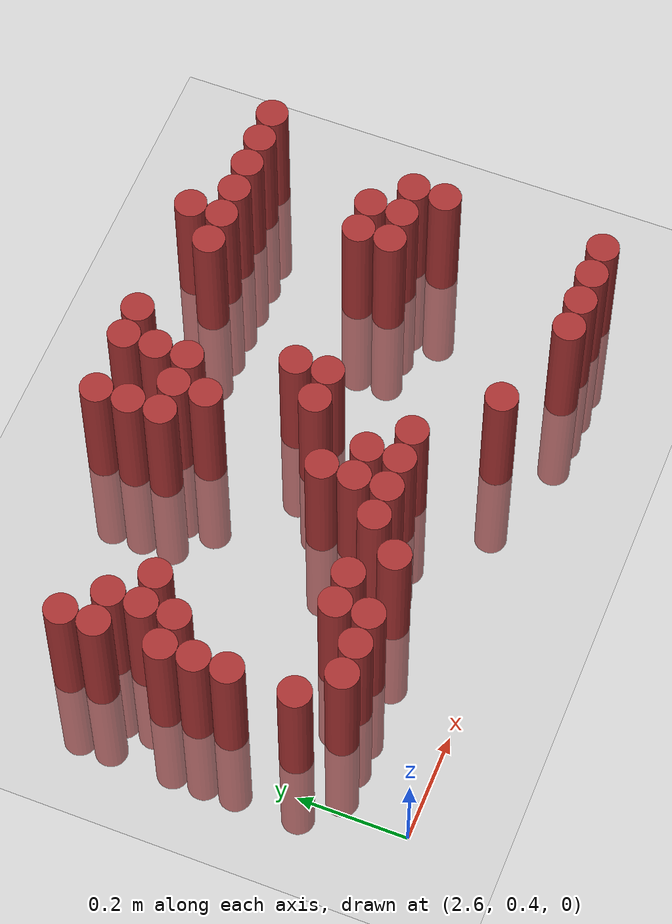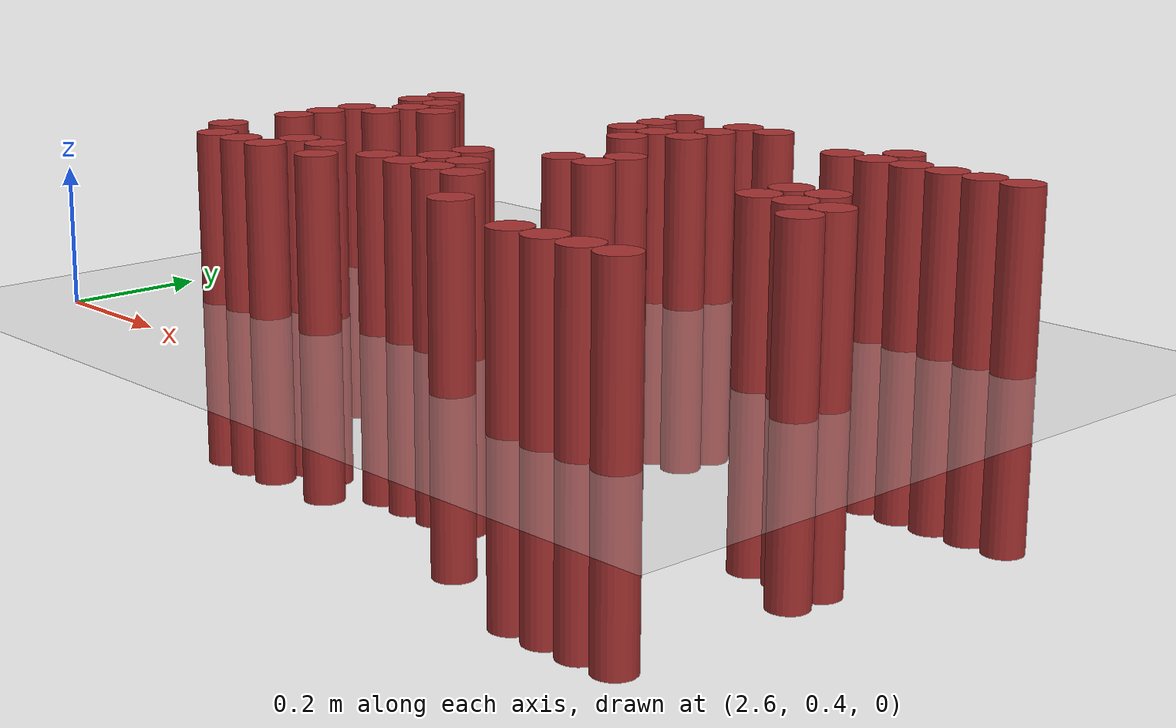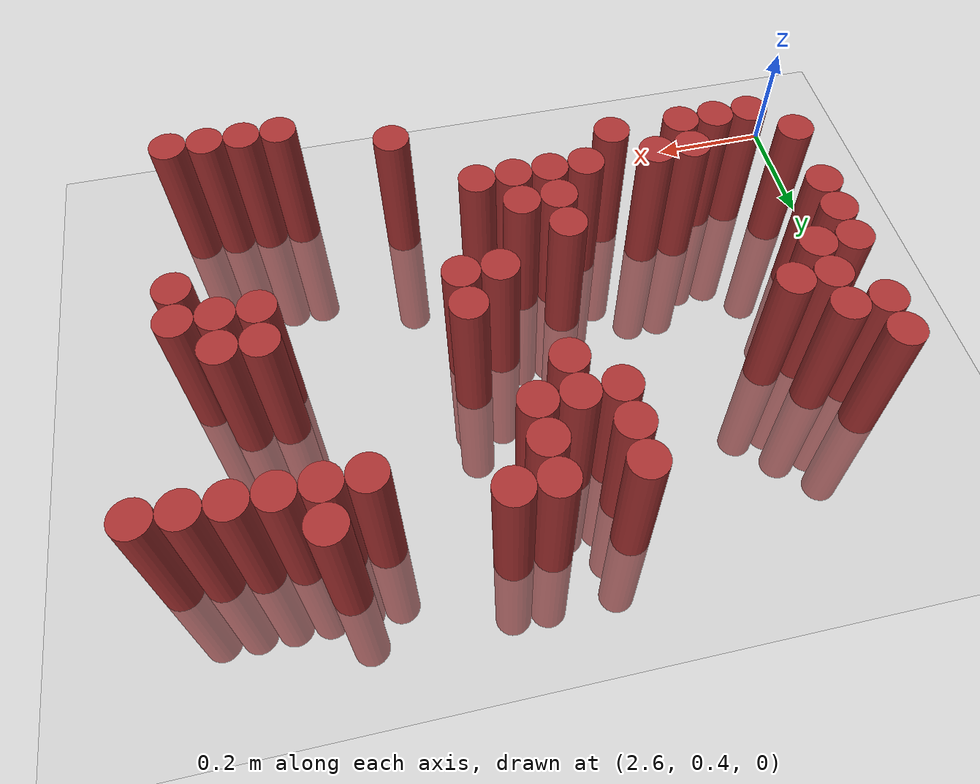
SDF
<sdf version="1.6">
 <world name="default">
  <model name="ground_plane">
   <static>1</static>
   <link name="link">
    <collision name="collision">
     <geometry><plane><normal>0 0 1</normal><size>100 100</size></plane></geometry>
     <surface><friction><ode><mu>100</mu><mu2>50</mu2></ode></friction></surface>
    </collision>
    <visual name="visual">
     <cast_shadows>0</cast_shadows>
     <geometry><plane><normal>0 0 1</normal><size>100 100</size></plane></geometry>
     <material>
      <script><uri>file://media/materials/scripts/gazebo.material</uri><name>Gazebo/Grey</name></script>
     </material>
    </visual>
   </link>
  </model>
  <model name="unit_cylinder_155">
   <static>1</static>
   <pose>3.090000 1.170000 0.000000 0.000000 0.000000 0.000000</pose>
   <link name="link">
    <inertial>
     <mass>1</mass>
     <inertia><ixx>0.145833</ixx><ixy>0</ixy><ixz>0</ixz><iyy>0.145833</iyy><iyz>0</iyz><izz>0.125</izz></inertia>
    </inertial>
    <collision name="collision">
     <geometry><cylinder><radius>0.030000</radius><length>0.5</length></cylinder></geometry>
    </collision>
    <visual name="visual">
     <geometry><cylinder><radius>0.030000</radius><length>0.5</length></cylinder></geometry>
     <material>
      <ambient>0.648000 0.192000 0.192000 1</ambient>
      <diffuse>0.648000 0.192000 0.192000 1</diffuse>
     </material>
     <material>
      <script><name>Gazebo/Grey</name><uri>file://media/materials/scripts/gazebo.material</uri></script>
     </material>
    </visual>
   </link>
  </model>
  <model name="unit_cylinder_156">
   <static>1</static>
   <pose>3.210000 1.170000 0.000000 0.000000 0.000000 0.000000</pose>
   <link name="link">
    <inertial>
     <mass>1</mass>
     <inertia><ixx>0.145833</ixx><ixy>0</ixy><ixz>0</ixz><iyy>0.145833</iyy><iyz>0</iyz><izz>0.125</izz></inertia>
    </inertial>
    <collision name="collision">
     <geometry><cylinder><radius>0.030000</radius><length>0.5</length></cylinder></geometry>
    </collision>
    <visual name="visual">
     <geometry><cylinder><radius>0.030000</radius><length>0.5</length></cylinder></geometry>
     <material>
      <ambient>0.648000 0.192000 0.192000 1</ambient>
      <diffuse>0.648000 0.192000 0.192000 1</diffuse>
     </material>
     <material>
      <script><name>Gazebo/Grey</name><uri>file://media/materials/scripts/gazebo.material</uri></script>
     </material>
    </visual>
   </link>
  </model>
  <model name="unit_cylinder_157">
   <static>1</static>
   <pose>3.270000 1.170000 0.000000 0.000000 0.000000 0.000000</pose>
   <link name="link">
    <inertial>
     <mass>1</mass>
     <inertia><ixx>0.145833</ixx><ixy>0</ixy><ixz>0</ixz><iyy>0.145833</iyy><iyz>0</iyz><izz>0.125</izz></inertia>
    </inertial>
    <collision name="collision">
     <geometry><cylinder><radius>0.030000</radius><length>0.5</length></cylinder></geometry>
    </collision>
    <visual name="visual">
     <geometry><cylinder><radius>0.030000</radius><length>0.5</length></cylinder></geometry>
     <material>
      <ambient>0.648000 0.192000 0.192000 1</ambient>
      <diffuse>0.648000 0.192000 0.192000 1</diffuse>
     </material>
     <material>
      <script><name>Gazebo/Grey</name><uri>file://media/materials/scripts/gazebo.material</uri></script>
     </material>
    </visual>
   </link>
  </model>
  <model name="unit_cylinder_158">
   <static>1</static>
   <pose>3.510000 1.170000 0.000000 0.000000 0.000000 0.000000</pose>
   <link name="link">
    <inertial>
     <mass>1</mass>
     <inertia><ixx>0.145833</ixx><ixy>0</ixy><ixz>0</ixz><iyy>0.145833</iyy><iyz>0</iyz><izz>0.125</izz></inertia>
    </inertial>
    <collision name="collision">
     <geometry><cylinder><radius>0.030000</radius><length>0.5</length></cylinder></geometry>
    </collision>
    <visual name="visual">
     <geometry><cylinder><radius>0.030000</radius><length>0.5</length></cylinder></geometry>
     <material>
      <ambient>0.648000 0.192000 0.192000 1</ambient>
      <diffuse>0.648000 0.192000 0.192000 1</diffuse>
     </material>
     <material>
      <script><name>Gazebo/Grey</name><uri>file://media/materials/scripts/gazebo.material</uri></script>
     </material>
    </visual>
   </link>
  </model>
  <model name="unit_cylinder_164">
   <static>1</static>
   <pose>3.090000 1.110000 0.000000 0.000000 0.000000 0.000000</pose>
   <link name="link">
    <inertial>
     <mass>1</mass>
     <inertia><ixx>0.145833</ixx><ixy>0</ixy><ixz>0</ixz><iyy>0.145833</iyy><iyz>0</iyz><izz>0.125</izz></inertia>
    </inertial>
    <collision name="collision">
     <geometry><cylinder><radius>0.030000</radius><length>0.5</length></cylinder></geometry>
    </collision>
    <visual name="visual">
     <geometry><cylinder><radius>0.030000</radius><length>0.5</length></cylinder></geometry>
     <material>
      <ambient>0.648000 0.192000 0.192000 1</ambient>
      <diffuse>0.648000 0.192000 0.192000 1</diffuse>
     </material>
     <material>
      <script><name>Gazebo/Grey</name><uri>file://media/materials/scripts/gazebo.material</uri></script>
     </material>
    </visual>
   </link>
  </model>
  <model name="unit_cylinder_165">
   <static>1</static>
   <pose>3.210000 1.110000 0.000000 0.000000 0.000000 0.000000</pose>
   <link name="link">
    <inertial>
     <mass>1</mass>
     <inertia><ixx>0.145833</ixx><ixy>0</ixy><ixz>0</ixz><iyy>0.145833</iyy><iyz>0</iyz><izz>0.125</izz></inertia>
    </inertial>
    <collision name="collision">
     <geometry><cylinder><radius>0.030000</radius><length>0.5</length></cylinder></geometry>
    </collision>
    <visual name="visual">
     <geometry><cylinder><radius>0.030000</radius><length>0.5</length></cylinder></geometry>
     <material>
      <ambient>0.648000 0.192000 0.192000 1</ambient>
      <diffuse>0.648000 0.192000 0.192000 1</diffuse>
     </material>
     <material>
      <script><name>Gazebo/Grey</name><uri>file://media/materials/scripts/gazebo.material</uri></script>
     </material>
    </visual>
   </link>
  </model>
  <model name="unit_cylinder_166">
   <static>1</static>
   <pose>3.450000 1.110000 0.000000 0.000000 0.000000 0.000000</pose>
   <link name="link">
    <inertial>
     <mass>1</mass>
     <inertia><ixx>0.145833</ixx><ixy>0</ixy><ixz>0</ixz><iyy>0.145833</iyy><iyz>0</iyz><izz>0.125</izz></inertia>
    </inertial>
    <collision name="collision">
     <geometry><cylinder><radius>0.030000</radius><length>0.5</length></cylinder></geometry>
    </collision>
    <visual name="visual">
     <geometry><cylinder><radius>0.030000</radius><length>0.5</length></cylinder></geometry>
     <material>
      <ambient>0.648000 0.192000 0.192000 1</ambient>
      <diffuse>0.648000 0.192000 0.192000 1</diffuse>
     </material>
     <material>
      <script><name>Gazebo/Grey</name><uri>file://media/materials/scripts/gazebo.material</uri></script>
     </material>
    </visual>
   </link>
  </model>
  <model name="unit_cylinder_167">
   <static>1</static>
   <pose>3.510000 1.110000 0.000000 0.000000 0.000000 0.000000</pose>
   <link name="link">
    <inertial>
     <mass>1</mass>
     <inertia><ixx>0.145833</ixx><ixy>0</ixy><ixz>0</ixz><iyy>0.145833</iyy><iyz>0</iyz><izz>0.125</izz></inertia>
    </inertial>
    <collision name="collision">
     <geometry><cylinder><radius>0.030000</radius><length>0.5</length></cylinder></geometry>
    </collision>
    <visual name="visual">
     <geometry><cylinder><radius>0.030000</radius><length>0.5</length></cylinder></geometry>
     <material>
      <ambient>0.648000 0.192000 0.192000 1</ambient>
      <diffuse>0.648000 0.192000 0.192000 1</diffuse>
     </material>
     <material>
      <script><name>Gazebo/Grey</name><uri>file://media/materials/scripts/gazebo.material</uri></script>
     </material>
    </visual>
   </link>
  </model>
  <model name="unit_cylinder_168">
   <static>1</static>
   <pose>3.570000 1.110000 0.000000 0.000000 0.000000 0.000000</pose>
   <link name="link">
    <inertial>
     <mass>1</mass>
     <inertia><ixx>0.145833</ixx><ixy>0</ixy><ixz>0</ixz><iyy>0.145833</iyy><iyz>0</iyz><izz>0.125</izz></inertia>
    </inertial>
    <collision name="collision">
     <geometry><cylinder><radius>0.030000</radius><length>0.5</length></cylinder></geometry>
    </collision>
    <visual name="visual">
     <geometry><cylinder><radius>0.030000</radius><length>0.5</length></cylinder></geometry>
     <material>
      <ambient>0.648000 0.192000 0.192000 1</ambient>
      <diffuse>0.648000 0.192000 0.192000 1</diffuse>
     </material>
     <material>
      <script><name>Gazebo/Grey</name><uri>file://media/materials/scripts/gazebo.material</uri></script>
     </material>
    </visual>
   </link>
  </model>
  <model name="unit_cylinder_169">
   <static>1</static>
   <pose>3.630000 1.110000 0.000000 0.000000 0.000000 0.000000</pose>
   <link name="link">
    <inertial>
     <mass>1</mass>
     <inertia><ixx>0.145833</ixx><ixy>0</ixy><ixz>0</ixz><iyy>0.145833</iyy><iyz>0</iyz><izz>0.125</izz></inertia>
    </inertial>
    <collision name="collision">
     <geometry><cylinder><radius>0.030000</radius><length>0.5</length></cylinder></geometry>
    </collision>
    <visual name="visual">
     <geometry><cylinder><radius>0.030000</radius><length>0.5</length></cylinder></geometry>
     <material>
      <ambient>0.648000 0.192000 0.192000 1</ambient>
      <diffuse>0.648000 0.192000 0.192000 1</diffuse>
     </material>
     <material>
      <script><name>Gazebo/Grey</name><uri>file://media/materials/scripts/gazebo.material</uri></script>
     </material>
    </visual>
   </link>
  </model>
  <model name="unit_cylinder_170">
   <static>1</static>
   <pose>3.690000 1.110000 0.000000 0.000000 0.000000 0.000000</pose>
   <link name="link">
    <inertial>
     <mass>1</mass>
     <inertia><ixx>0.145833</ixx><ixy>0</ixy><ixz>0</ixz><iyy>0.145833</iyy><iyz>0</iyz><izz>0.125</izz></inertia>
    </inertial>
    <collision name="collision">
     <geometry><cylinder><radius>0.030000</radius><length>0.5</length></cylinder></geometry>
    </collision>
    <visual name="visual">
     <geometry><cylinder><radius>0.030000</radius><length>0.5</length></cylinder></geometry>
     <material>
      <ambient>0.648000 0.192000 0.192000 1</ambient>
      <diffuse>0.648000 0.192000 0.192000 1</diffuse>
     </material>
     <material>
      <script><name>Gazebo/Grey</name><uri>file://media/materials/scripts/gazebo.material</uri></script>
     </material>
    </visual>
   </link>
  </model>
  <model name="unit_cylinder_171">
   <static>1</static>
   <pose>3.750000 1.110000 0.000000 0.000000 0.000000 0.000000</pose>
   <link name="link">
    <inertial>
     <mass>1</mass>
     <inertia><ixx>0.145833</ixx><ixy>0</ixy><ixz>0</ixz><iyy>0.145833</iyy><iyz>0</iyz><izz>0.125</izz></inertia>
    </inertial>
    <collision name="collision">
     <geometry><cylinder><radius>0.030000</radius><length>0.5</length></cylinder></geometry>
    </collision>
    <visual name="visual">
     <geometry><cylinder><radius>0.030000</radius><length>0.5</length></cylinder></geometry>
     <material>
      <ambient>0.648000 0.192000 0.192000 1</ambient>
      <diffuse>0.648000 0.192000 0.192000 1</diffuse>
     </material>
     <material>
      <script><name>Gazebo/Grey</name><uri>file://media/materials/scripts/gazebo.material</uri></script>
     </material>
    </visual>
   </link>
  </model>
  <model name="unit_cylinder_174">
   <static>1</static>
   <pose>2.670000 1.050000 0.000000 0.000000 0.000000 0.000000</pose>
   <link name="link">
    <inertial>
     <mass>1</mass>
     <inertia><ixx>0.145833</ixx><ixy>0</ixy><ixz>0</ixz><iyy>0.145833</iyy><iyz>0</iyz><izz>0.125</izz></inertia>
    </inertial>
    <collision name="collision">
     <geometry><cylinder><radius>0.030000</radius><length>0.5</length></cylinder></geometry>
    </collision>
    <visual name="visual">
     <geometry><cylinder><radius>0.030000</radius><length>0.5</length></cylinder></geometry>
     <material>
      <ambient>0.648000 0.192000 0.192000 1</ambient>
      <diffuse>0.648000 0.192000 0.192000 1</diffuse>
     </material>
     <material>
      <script><name>Gazebo/Grey</name><uri>file://media/materials/scripts/gazebo.material</uri></script>
     </material>
    </visual>
   </link>
  </model>
  <model name="unit_cylinder_175">
   <static>1</static>
   <pose>3.090000 1.050000 0.000000 0.000000 0.000000 0.000000</pose>
   <link name="link">
    <inertial>
     <mass>1</mass>
     <inertia><ixx>0.145833</ixx><ixy>0</ixy><ixz>0</ixz><iyy>0.145833</iyy><iyz>0</iyz><izz>0.125</izz></inertia>
    </inertial>
    <collision name="collision">
     <geometry><cylinder><radius>0.030000</radius><length>0.5</length></cylinder></geometry>
    </collision>
    <visual name="visual">
     <geometry><cylinder><radius>0.030000</radius><length>0.5</length></cylinder></geometry>
     <material>
      <ambient>0.648000 0.192000 0.192000 1</ambient>
      <diffuse>0.648000 0.192000 0.192000 1</diffuse>
     </material>
     <material>
      <script><name>Gazebo/Grey</name><uri>file://media/materials/scripts/gazebo.material</uri></script>
     </material>
    </visual>
   </link>
  </model>
  <model name="unit_cylinder_176">
   <static>1</static>
   <pose>3.150000 1.050000 0.000000 0.000000 0.000000 0.000000</pose>
   <link name="link">
    <inertial>
     <mass>1</mass>
     <inertia><ixx>0.145833</ixx><ixy>0</ixy><ixz>0</ixz><iyy>0.145833</iyy><iyz>0</iyz><izz>0.125</izz></inertia>
    </inertial>
    <collision name="collision">
     <geometry><cylinder><radius>0.030000</radius><length>0.5</length></cylinder></geometry>
    </collision>
    <visual name="visual">
     <geometry><cylinder><radius>0.030000</radius><length>0.5</length></cylinder></geometry>
     <material>
      <ambient>0.648000 0.192000 0.192000 1</ambient>
      <diffuse>0.648000 0.192000 0.192000 1</diffuse>
     </material>
     <material>
      <script><name>Gazebo/Grey</name><uri>file://media/materials/scripts/gazebo.material</uri></script>
     </material>
    </visual>
   </link>
  </model>
  <model name="unit_cylinder_177">
   <static>1</static>
   <pose>3.210000 1.050000 0.000000 0.000000 0.000000 0.000000</pose>
   <link name="link">
    <inertial>
     <mass>1</mass>
     <inertia><ixx>0.145833</ixx><ixy>0</ixy><ixz>0</ixz><iyy>0.145833</iyy><iyz>0</iyz><izz>0.125</izz></inertia>
    </inertial>
    <collision name="collision">
     <geometry><cylinder><radius>0.030000</radius><length>0.5</length></cylinder></geometry>
    </collision>
    <visual name="visual">
     <geometry><cylinder><radius>0.030000</radius><length>0.5</length></cylinder></geometry>
     <material>
      <ambient>0.648000 0.192000 0.192000 1</ambient>
      <diffuse>0.648000 0.192000 0.192000 1</diffuse>
     </material>
     <material>
      <script><name>Gazebo/Grey</name><uri>file://media/materials/scripts/gazebo.material</uri></script>
     </material>
    </visual>
   </link>
  </model>
  <model name="unit_cylinder_183">
   <static>1</static>
   <pose>2.670000 0.990000 0.000000 0.000000 0.000000 0.000000</pose>
   <link name="link">
    <inertial>
     <mass>1</mass>
     <inertia><ixx>0.145833</ixx><ixy>0</ixy><ixz>0</ixz><iyy>0.145833</iyy><iyz>0</iyz><izz>0.125</izz></inertia>
    </inertial>
    <collision name="collision">
     <geometry><cylinder><radius>0.030000</radius><length>0.5</length></cylinder></geometry>
    </collision>
    <visual name="visual">
     <geometry><cylinder><radius>0.030000</radius><length>0.5</length></cylinder></geometry>
     <material>
      <ambient>0.648000 0.192000 0.192000 1</ambient>
      <diffuse>0.648000 0.192000 0.192000 1</diffuse>
     </material>
     <material>
      <script><name>Gazebo/Grey</name><uri>file://media/materials/scripts/gazebo.material</uri></script>
     </material>
    </visual>
   </link>
  </model>
  <model name="unit_cylinder_184">
   <static>1</static>
   <pose>2.730000 0.990000 0.000000 0.000000 0.000000 0.000000</pose>
   <link name="link">
    <inertial>
     <mass>1</mass>
     <inertia><ixx>0.145833</ixx><ixy>0</ixy><ixz>0</ixz><iyy>0.145833</iyy><iyz>0</iyz><izz>0.125</izz></inertia>
    </inertial>
    <collision name="collision">
     <geometry><cylinder><radius>0.030000</radius><length>0.5</length></cylinder></geometry>
    </collision>
    <visual name="visual">
     <geometry><cylinder><radius>0.030000</radius><length>0.5</length></cylinder></geometry>
     <material>
      <ambient>0.648000 0.192000 0.192000 1</ambient>
      <diffuse>0.648000 0.192000 0.192000 1</diffuse>
     </material>
     <material>
      <script><name>Gazebo/Grey</name><uri>file://media/materials/scripts/gazebo.material</uri></script>
     </material>
    </visual>
   </link>
  </model>
  <model name="unit_cylinder_185">
   <static>1</static>
   <pose>3.150000 0.990000 0.000000 0.000000 0.000000 0.000000</pose>
   <link name="link">
    <inertial>
     <mass>1</mass>
     <inertia><ixx>0.145833</ixx><ixy>0</ixy><ixz>0</ixz><iyy>0.145833</iyy><iyz>0</iyz><izz>0.125</izz></inertia>
    </inertial>
    <collision name="collision">
     <geometry><cylinder><radius>0.030000</radius><length>0.5</length></cylinder></geometry>
    </collision>
    <visual name="visual">
     <geometry><cylinder><radius>0.030000</radius><length>0.5</length></cylinder></geometry>
     <material>
      <ambient>0.648000 0.192000 0.192000 1</ambient>
      <diffuse>0.648000 0.192000 0.192000 1</diffuse>
     </material>
     <material>
      <script><name>Gazebo/Grey</name><uri>file://media/materials/scripts/gazebo.material</uri></script>
     </material>
    </visual>
   </link>
  </model>
  <model name="unit_cylinder_189">
   <static>1</static>
   <pose>2.730000 0.930000 0.000000 0.000000 0.000000 0.000000</pose>
   <link name="link">
    <inertial>
     <mass>1</mass>
     <inertia><ixx>0.145833</ixx><ixy>0</ixy><ixz>0</ixz><iyy>0.145833</iyy><iyz>0</iyz><izz>0.125</izz></inertia>
    </inertial>
    <collision name="collision">
     <geometry><cylinder><radius>0.030000</radius><length>0.5</length></cylinder></geometry>
    </collision>
    <visual name="visual">
     <geometry><cylinder><radius>0.030000</radius><length>0.5</length></cylinder></geometry>
     <material>
      <ambient>0.648000 0.192000 0.192000 1</ambient>
      <diffuse>0.648000 0.192000 0.192000 1</diffuse>
     </material>
     <material>
      <script><name>Gazebo/Grey</name><uri>file://media/materials/scripts/gazebo.material</uri></script>
     </material>
    </visual>
   </link>
  </model>
  <model name="unit_cylinder_190">
   <static>1</static>
   <pose>2.790000 0.930000 0.000000 0.000000 0.000000 0.000000</pose>
   <link name="link">
    <inertial>
     <mass>1</mass>
     <inertia><ixx>0.145833</ixx><ixy>0</ixy><ixz>0</ixz><iyy>0.145833</iyy><iyz>0</iyz><izz>0.125</izz></inertia>
    </inertial>
    <collision name="collision">
     <geometry><cylinder><radius>0.030000</radius><length>0.5</length></cylinder></geometry>
    </collision>
    <visual name="visual">
     <geometry><cylinder><radius>0.030000</radius><length>0.5</length></cylinder></geometry>
     <material>
      <ambient>0.648000 0.192000 0.192000 1</ambient>
      <diffuse>0.648000 0.192000 0.192000 1</diffuse>
     </material>
     <material>
      <script><name>Gazebo/Grey</name><uri>file://media/materials/scripts/gazebo.material</uri></script>
     </material>
    </visual>
   </link>
  </model>
  <model name="unit_cylinder_193">
   <static>1</static>
   <pose>2.670000 0.870000 0.000000 0.000000 0.000000 0.000000</pose>
   <link name="link">
    <inertial>
     <mass>1</mass>
     <inertia><ixx>0.145833</ixx><ixy>0</ixy><ixz>0</ixz><iyy>0.145833</iyy><iyz>0</iyz><izz>0.125</izz></inertia>
    </inertial>
    <collision name="collision">
     <geometry><cylinder><radius>0.030000</radius><length>0.5</length></cylinder></geometry>
    </collision>
    <visual name="visual">
     <geometry><cylinder><radius>0.030000</radius><length>0.5</length></cylinder></geometry>
     <material>
      <ambient>0.648000 0.192000 0.192000 1</ambient>
      <diffuse>0.648000 0.192000 0.192000 1</diffuse>
     </material>
     <material>
      <script><name>Gazebo/Grey</name><uri>file://media/materials/scripts/gazebo.material</uri></script>
     </material>
    </visual>
   </link>
  </model>
  <model name="unit_cylinder_194">
   <static>1</static>
   <pose>2.730000 0.870000 0.000000 0.000000 0.000000 0.000000</pose>
   <link name="link">
    <inertial>
     <mass>1</mass>
     <inertia><ixx>0.145833</ixx><ixy>0</ixy><ixz>0</ixz><iyy>0.145833</iyy><iyz>0</iyz><izz>0.125</izz></inertia>
    </inertial>
    <collision name="collision">
     <geometry><cylinder><radius>0.030000</radius><length>0.5</length></cylinder></geometry>
    </collision>
    <visual name="visual">
     <geometry><cylinder><radius>0.030000</radius><length>0.5</length></cylinder></geometry>
     <material>
      <ambient>0.648000 0.192000 0.192000 1</ambient>
      <diffuse>0.648000 0.192000 0.192000 1</diffuse>
     </material>
     <material>
      <script><name>Gazebo/Grey</name><uri>file://media/materials/scripts/gazebo.material</uri></script>
     </material>
    </visual>
   </link>
  </model>
  <model name="unit_cylinder_195">
   <static>1</static>
   <pose>3.270000 0.870000 0.000000 0.000000 0.000000 0.000000</pose>
   <link name="link">
    <inertial>
     <mass>1</mass>
     <inertia><ixx>0.145833</ixx><ixy>0</ixy><ixz>0</ixz><iyy>0.145833</iyy><iyz>0</iyz><izz>0.125</izz></inertia>
    </inertial>
    <collision name="collision">
     <geometry><cylinder><radius>0.030000</radius><length>0.5</length></cylinder></geometry>
    </collision>
    <visual name="visual">
     <geometry><cylinder><radius>0.030000</radius><length>0.5</length></cylinder></geometry>
     <material>
      <ambient>0.648000 0.192000 0.192000 1</ambient>
      <diffuse>0.648000 0.192000 0.192000 1</diffuse>
     </material>
     <material>
      <script><name>Gazebo/Grey</name><uri>file://media/materials/scripts/gazebo.material</uri></script>
     </material>
    </visual>
   </link>
  </model>
  <model name="unit_cylinder_196">
   <static>1</static>
   <pose>3.570000 0.870000 0.000000 0.000000 0.000000 0.000000</pose>
   <link name="link">
    <inertial>
     <mass>1</mass>
     <inertia><ixx>0.145833</ixx><ixy>0</ixy><ixz>0</ixz><iyy>0.145833</iyy><iyz>0</iyz><izz>0.125</izz></inertia>
    </inertial>
    <collision name="collision">
     <geometry><cylinder><radius>0.030000</radius><length>0.5</length></cylinder></geometry>
    </collision>
    <visual name="visual">
     <geometry><cylinder><radius>0.030000</radius><length>0.5</length></cylinder></geometry>
     <material>
      <ambient>0.648000 0.192000 0.192000 1</ambient>
      <diffuse>0.648000 0.192000 0.192000 1</diffuse>
     </material>
     <material>
      <script><name>Gazebo/Grey</name><uri>file://media/materials/scripts/gazebo.material</uri></script>
     </material>
    </visual>
   </link>
  </model>
  <model name="unit_cylinder_197">
   <static>1</static>
   <pose>3.630000 0.870000 0.000000 0.000000 0.000000 0.000000</pose>
   <link name="link">
    <inertial>
     <mass>1</mass>
     <inertia><ixx>0.145833</ixx><ixy>0</ixy><ixz>0</ixz><iyy>0.145833</iyy><iyz>0</iyz><izz>0.125</izz></inertia>
    </inertial>
    <collision name="collision">
     <geometry><cylinder><radius>0.030000</radius><length>0.5</length></cylinder></geometry>
    </collision>
    <visual name="visual">
     <geometry><cylinder><radius>0.030000</radius><length>0.5</length></cylinder></geometry>
     <material>
      <ambient>0.648000 0.192000 0.192000 1</ambient>
      <diffuse>0.648000 0.192000 0.192000 1</diffuse>
     </material>
     <material>
      <script><name>Gazebo/Grey</name><uri>file://media/materials/scripts/gazebo.material</uri></script>
     </material>
    </visual>
   </link>
  </model>
  <model name="unit_cylinder_205">
   <static>1</static>
   <pose>2.670000 0.810000 0.000000 0.000000 0.000000 0.000000</pose>
   <link name="link">
    <inertial>
     <mass>1</mass>
     <inertia><ixx>0.145833</ixx><ixy>0</ixy><ixz>0</ixz><iyy>0.145833</iyy><iyz>0</iyz><izz>0.125</izz></inertia>
    </inertial>
    <collision name="collision">
     <geometry><cylinder><radius>0.030000</radius><length>0.5</length></cylinder></geometry>
    </collision>
    <visual name="visual">
     <geometry><cylinder><radius>0.030000</radius><length>0.5</length></cylinder></geometry>
     <material>
      <ambient>0.648000 0.192000 0.192000 1</ambient>
      <diffuse>0.648000 0.192000 0.192000 1</diffuse>
     </material>
     <material>
      <script><name>Gazebo/Grey</name><uri>file://media/materials/scripts/gazebo.material</uri></script>
     </material>
    </visual>
   </link>
  </model>
  <model name="unit_cylinder_206">
   <static>1</static>
   <pose>3.210000 0.810000 0.000000 0.000000 0.000000 0.000000</pose>
   <link name="link">
    <inertial>
     <mass>1</mass>
     <inertia><ixx>0.145833</ixx><ixy>0</ixy><ixz>0</ixz><iyy>0.145833</iyy><iyz>0</iyz><izz>0.125</izz></inertia>
    </inertial>
    <collision name="collision">
     <geometry><cylinder><radius>0.030000</radius><length>0.5</length></cylinder></geometry>
    </collision>
    <visual name="visual">
     <geometry><cylinder><radius>0.030000</radius><length>0.5</length></cylinder></geometry>
     <material>
      <ambient>0.648000 0.192000 0.192000 1</ambient>
      <diffuse>0.648000 0.192000 0.192000 1</diffuse>
     </material>
     <material>
      <script><name>Gazebo/Grey</name><uri>file://media/materials/scripts/gazebo.material</uri></script>
     </material>
    </visual>
   </link>
  </model>
  <model name="unit_cylinder_207">
   <static>1</static>
   <pose>3.270000 0.810000 0.000000 0.000000 0.000000 0.000000</pose>
   <link name="link">
    <inertial>
     <mass>1</mass>
     <inertia><ixx>0.145833</ixx><ixy>0</ixy><ixz>0</ixz><iyy>0.145833</iyy><iyz>0</iyz><izz>0.125</izz></inertia>
    </inertial>
    <collision name="collision">
     <geometry><cylinder><radius>0.030000</radius><length>0.5</length></cylinder></geometry>
    </collision>
    <visual name="visual">
     <geometry><cylinder><radius>0.030000</radius><length>0.5</length></cylinder></geometry>
     <material>
      <ambient>0.648000 0.192000 0.192000 1</ambient>
      <diffuse>0.648000 0.192000 0.192000 1</diffuse>
     </material>
     <material>
      <script><name>Gazebo/Grey</name><uri>file://media/materials/scripts/gazebo.material</uri></script>
     </material>
    </visual>
   </link>
  </model>
  <model name="unit_cylinder_208">
   <static>1</static>
   <pose>3.570000 0.810000 0.000000 0.000000 0.000000 0.000000</pose>
   <link name="link">
    <inertial>
     <mass>1</mass>
     <inertia><ixx>0.145833</ixx><ixy>0</ixy><ixz>0</ixz><iyy>0.145833</iyy><iyz>0</iyz><izz>0.125</izz></inertia>
    </inertial>
    <collision name="collision">
     <geometry><cylinder><radius>0.030000</radius><length>0.5</length></cylinder></geometry>
    </collision>
    <visual name="visual">
     <geometry><cylinder><radius>0.030000</radius><length>0.5</length></cylinder></geometry>
     <material>
      <ambient>0.648000 0.192000 0.192000 1</ambient>
      <diffuse>0.648000 0.192000 0.192000 1</diffuse>
     </material>
     <material>
      <script><name>Gazebo/Grey</name><uri>file://media/materials/scripts/gazebo.material</uri></script>
     </material>
    </visual>
   </link>
  </model>
  <model name="unit_cylinder_209">
   <static>1</static>
   <pose>3.630000 0.810000 0.000000 0.000000 0.000000 0.000000</pose>
   <link name="link">
    <inertial>
     <mass>1</mass>
     <inertia><ixx>0.145833</ixx><ixy>0</ixy><ixz>0</ixz><iyy>0.145833</iyy><iyz>0</iyz><izz>0.125</izz></inertia>
    </inertial>
    <collision name="collision">
     <geometry><cylinder><radius>0.030000</radius><length>0.5</length></cylinder></geometry>
    </collision>
    <visual name="visual">
     <geometry><cylinder><radius>0.030000</radius><length>0.5</length></cylinder></geometry>
     <material>
      <ambient>0.648000 0.192000 0.192000 1</ambient>
      <diffuse>0.648000 0.192000 0.192000 1</diffuse>
     </material>
     <material>
      <script><name>Gazebo/Grey</name><uri>file://media/materials/scripts/gazebo.material</uri></script>
     </material>
    </visual>
   </link>
  </model>
  <model name="unit_cylinder_210">
   <static>1</static>
   <pose>3.690000 0.810000 0.000000 0.000000 0.000000 0.000000</pose>
   <link name="link">
    <inertial>
     <mass>1</mass>
     <inertia><ixx>0.145833</ixx><ixy>0</ixy><ixz>0</ixz><iyy>0.145833</iyy><iyz>0</iyz><izz>0.125</izz></inertia>
    </inertial>
    <collision name="collision">
     <geometry><cylinder><radius>0.030000</radius><length>0.5</length></cylinder></geometry>
    </collision>
    <visual name="visual">
     <geometry><cylinder><radius>0.030000</radius><length>0.5</length></cylinder></geometry>
     <material>
      <ambient>0.648000 0.192000 0.192000 1</ambient>
      <diffuse>0.648000 0.192000 0.192000 1</diffuse>
     </material>
     <material>
      <script><name>Gazebo/Grey</name><uri>file://media/materials/scripts/gazebo.material</uri></script>
     </material>
    </visual>
   </link>
  </model>
  <model name="unit_cylinder_214">
   <static>1</static>
   <pose>2.670000 0.750000 0.000000 0.000000 0.000000 0.000000</pose>
   <link name="link">
    <inertial>
     <mass>1</mass>
     <inertia><ixx>0.145833</ixx><ixy>0</ixy><ixz>0</ixz><iyy>0.145833</iyy><iyz>0</iyz><izz>0.125</izz></inertia>
    </inertial>
    <collision name="collision">
     <geometry><cylinder><radius>0.030000</radius><length>0.5</length></cylinder></geometry>
    </collision>
    <visual name="visual">
     <geometry><cylinder><radius>0.030000</radius><length>0.5</length></cylinder></geometry>
     <material>
      <ambient>0.648000 0.192000 0.192000 1</ambient>
      <diffuse>0.648000 0.192000 0.192000 1</diffuse>
     </material>
     <material>
      <script><name>Gazebo/Grey</name><uri>file://media/materials/scripts/gazebo.material</uri></script>
     </material>
    </visual>
   </link>
  </model>
  <model name="unit_cylinder_215">
   <static>1</static>
   <pose>3.090000 0.750000 0.000000 0.000000 0.000000 0.000000</pose>
   <link name="link">
    <inertial>
     <mass>1</mass>
     <inertia><ixx>0.145833</ixx><ixy>0</ixy><ixz>0</ixz><iyy>0.145833</iyy><iyz>0</iyz><izz>0.125</izz></inertia>
    </inertial>
    <collision name="collision">
     <geometry><cylinder><radius>0.030000</radius><length>0.5</length></cylinder></geometry>
    </collision>
    <visual name="visual">
     <geometry><cylinder><radius>0.030000</radius><length>0.5</length></cylinder></geometry>
     <material>
      <ambient>0.648000 0.192000 0.192000 1</ambient>
      <diffuse>0.648000 0.192000 0.192000 1</diffuse>
     </material>
     <material>
      <script><name>Gazebo/Grey</name><uri>file://media/materials/scripts/gazebo.material</uri></script>
     </material>
    </visual>
   </link>
  </model>
  <model name="unit_cylinder_216">
   <static>1</static>
   <pose>3.690000 0.750000 0.000000 0.000000 0.000000 0.000000</pose>
   <link name="link">
    <inertial>
     <mass>1</mass>
     <inertia><ixx>0.145833</ixx><ixy>0</ixy><ixz>0</ixz><iyy>0.145833</iyy><iyz>0</iyz><izz>0.125</izz></inertia>
    </inertial>
    <collision name="collision">
     <geometry><cylinder><radius>0.030000</radius><length>0.5</length></cylinder></geometry>
    </collision>
    <visual name="visual">
     <geometry><cylinder><radius>0.030000</radius><length>0.5</length></cylinder></geometry>
     <material>
      <ambient>0.648000 0.192000 0.192000 1</ambient>
      <diffuse>0.648000 0.192000 0.192000 1</diffuse>
     </material>
     <material>
      <script><name>Gazebo/Grey</name><uri>file://media/materials/scripts/gazebo.material</uri></script>
     </material>
    </visual>
   </link>
  </model>
  <model name="unit_cylinder_218">
   <static>1</static>
   <pose>3.090000 0.690000 0.000000 0.000000 0.000000 0.000000</pose>
   <link name="link">
    <inertial>
     <mass>1</mass>
     <inertia><ixx>0.145833</ixx><ixy>0</ixy><ixz>0</ixz><iyy>0.145833</iyy><iyz>0</iyz><izz>0.125</izz></inertia>
    </inertial>
    <collision name="collision">
     <geometry><cylinder><radius>0.030000</radius><length>0.5</length></cylinder></geometry>
    </collision>
    <visual name="visual">
     <geometry><cylinder><radius>0.030000</radius><length>0.5</length></cylinder></geometry>
     <material>
      <ambient>0.648000 0.192000 0.192000 1</ambient>
      <diffuse>0.648000 0.192000 0.192000 1</diffuse>
     </material>
     <material>
      <script><name>Gazebo/Grey</name><uri>file://media/materials/scripts/gazebo.material</uri></script>
     </material>
    </visual>
   </link>
  </model>
  <model name="unit_cylinder_219">
   <static>1</static>
   <pose>3.150000 0.690000 0.000000 0.000000 0.000000 0.000000</pose>
   <link name="link">
    <inertial>
     <mass>1</mass>
     <inertia><ixx>0.145833</ixx><ixy>0</ixy><ixz>0</ixz><iyy>0.145833</iyy><iyz>0</iyz><izz>0.125</izz></inertia>
    </inertial>
    <collision name="collision">
     <geometry><cylinder><radius>0.030000</radius><length>0.5</length></cylinder></geometry>
    </collision>
    <visual name="visual">
     <geometry><cylinder><radius>0.030000</radius><length>0.5</length></cylinder></geometry>
     <material>
      <ambient>0.648000 0.192000 0.192000 1</ambient>
      <diffuse>0.648000 0.192000 0.192000 1</diffuse>
     </material>
     <material>
      <script><name>Gazebo/Grey</name><uri>file://media/materials/scripts/gazebo.material</uri></script>
     </material>
    </visual>
   </link>
  </model>
  <model name="unit_cylinder_221">
   <static>1</static>
   <pose>2.670000 0.630000 0.000000 0.000000 0.000000 0.000000</pose>
   <link name="link">
    <inertial>
     <mass>1</mass>
     <inertia><ixx>0.145833</ixx><ixy>0</ixy><ixz>0</ixz><iyy>0.145833</iyy><iyz>0</iyz><izz>0.125</izz></inertia>
    </inertial>
    <collision name="collision">
     <geometry><cylinder><radius>0.030000</radius><length>0.5</length></cylinder></geometry>
    </collision>
    <visual name="visual">
     <geometry><cylinder><radius>0.030000</radius><length>0.5</length></cylinder></geometry>
     <material>
      <ambient>0.648000 0.192000 0.192000 1</ambient>
      <diffuse>0.648000 0.192000 0.192000 1</diffuse>
     </material>
     <material>
      <script><name>Gazebo/Grey</name><uri>file://media/materials/scripts/gazebo.material</uri></script>
     </material>
    </visual>
   </link>
  </model>
  <model name="unit_cylinder_222">
   <static>1</static>
   <pose>2.850000 0.630000 0.000000 0.000000 0.000000 0.000000</pose>
   <link name="link">
    <inertial>
     <mass>1</mass>
     <inertia><ixx>0.145833</ixx><ixy>0</ixy><ixz>0</ixz><iyy>0.145833</iyy><iyz>0</iyz><izz>0.125</izz></inertia>
    </inertial>
    <collision name="collision">
     <geometry><cylinder><radius>0.030000</radius><length>0.5</length></cylinder></geometry>
    </collision>
    <visual name="visual">
     <geometry><cylinder><radius>0.030000</radius><length>0.5</length></cylinder></geometry>
     <material>
      <ambient>0.648000 0.192000 0.192000 1</ambient>
      <diffuse>0.648000 0.192000 0.192000 1</diffuse>
     </material>
     <material>
      <script><name>Gazebo/Grey</name><uri>file://media/materials/scripts/gazebo.material</uri></script>
     </material>
    </visual>
   </link>
  </model>
  <model name="unit_cylinder_223">
   <static>1</static>
   <pose>2.910000 0.630000 0.000000 0.000000 0.000000 0.000000</pose>
   <link name="link">
    <inertial>
     <mass>1</mass>
     <inertia><ixx>0.145833</ixx><ixy>0</ixy><ixz>0</ixz><iyy>0.145833</iyy><iyz>0</iyz><izz>0.125</izz></inertia>
    </inertial>
    <collision name="collision">
     <geometry><cylinder><radius>0.030000</radius><length>0.5</length></cylinder></geometry>
    </collision>
    <visual name="visual">
     <geometry><cylinder><radius>0.030000</radius><length>0.5</length></cylinder></geometry>
     <material>
      <ambient>0.648000 0.192000 0.192000 1</ambient>
      <diffuse>0.648000 0.192000 0.192000 1</diffuse>
     </material>
     <material>
      <script><name>Gazebo/Grey</name><uri>file://media/materials/scripts/gazebo.material</uri></script>
     </material>
    </visual>
   </link>
  </model>
  <model name="unit_cylinder_224">
   <static>1</static>
   <pose>3.030000 0.630000 0.000000 0.000000 0.000000 0.000000</pose>
   <link name="link">
    <inertial>
     <mass>1</mass>
     <inertia><ixx>0.145833</ixx><ixy>0</ixy><ixz>0</ixz><iyy>0.145833</iyy><iyz>0</iyz><izz>0.125</izz></inertia>
    </inertial>
    <collision name="collision">
     <geometry><cylinder><radius>0.030000</radius><length>0.5</length></cylinder></geometry>
    </collision>
    <visual name="visual">
     <geometry><cylinder><radius>0.030000</radius><length>0.5</length></cylinder></geometry>
     <material>
      <ambient>0.648000 0.192000 0.192000 1</ambient>
      <diffuse>0.648000 0.192000 0.192000 1</diffuse>
     </material>
     <material>
      <script><name>Gazebo/Grey</name><uri>file://media/materials/scripts/gazebo.material</uri></script>
     </material>
    </visual>
   </link>
  </model>
  <model name="unit_cylinder_225">
   <static>1</static>
   <pose>3.090000 0.630000 0.000000 0.000000 0.000000 0.000000</pose>
   <link name="link">
    <inertial>
     <mass>1</mass>
     <inertia><ixx>0.145833</ixx><ixy>0</ixy><ixz>0</ixz><iyy>0.145833</iyy><iyz>0</iyz><izz>0.125</izz></inertia>
    </inertial>
    <collision name="collision">
     <geometry><cylinder><radius>0.030000</radius><length>0.5</length></cylinder></geometry>
    </collision>
    <visual name="visual">
     <geometry><cylinder><radius>0.030000</radius><length>0.5</length></cylinder></geometry>
     <material>
      <ambient>0.648000 0.192000 0.192000 1</ambient>
      <diffuse>0.648000 0.192000 0.192000 1</diffuse>
     </material>
     <material>
      <script><name>Gazebo/Grey</name><uri>file://media/materials/scripts/gazebo.material</uri></script>
     </material>
    </visual>
   </link>
  </model>
  <model name="unit_cylinder_226">
   <static>1</static>
   <pose>3.150000 0.630000 0.000000 0.000000 0.000000 0.000000</pose>
   <link name="link">
    <inertial>
     <mass>1</mass>
     <inertia><ixx>0.145833</ixx><ixy>0</ixy><ixz>0</ixz><iyy>0.145833</iyy><iyz>0</iyz><izz>0.125</izz></inertia>
    </inertial>
    <collision name="collision">
     <geometry><cylinder><radius>0.030000</radius><length>0.5</length></cylinder></geometry>
    </collision>
    <visual name="visual">
     <geometry><cylinder><radius>0.030000</radius><length>0.5</length></cylinder></geometry>
     <material>
      <ambient>0.648000 0.192000 0.192000 1</ambient>
      <diffuse>0.648000 0.192000 0.192000 1</diffuse>
     </material>
     <material>
      <script><name>Gazebo/Grey</name><uri>file://media/materials/scripts/gazebo.material</uri></script>
     </material>
    </visual>
   </link>
  </model>
  <model name="unit_cylinder_227">
   <static>1</static>
   <pose>3.210000 0.630000 0.000000 0.000000 0.000000 0.000000</pose>
   <link name="link">
    <inertial>
     <mass>1</mass>
     <inertia><ixx>0.145833</ixx><ixy>0</ixy><ixz>0</ixz><iyy>0.145833</iyy><iyz>0</iyz><izz>0.125</izz></inertia>
    </inertial>
    <collision name="collision">
     <geometry><cylinder><radius>0.030000</radius><length>0.5</length></cylinder></geometry>
    </collision>
    <visual name="visual">
     <geometry><cylinder><radius>0.030000</radius><length>0.5</length></cylinder></geometry>
     <material>
      <ambient>0.648000 0.192000 0.192000 1</ambient>
      <diffuse>0.648000 0.192000 0.192000 1</diffuse>
     </material>
     <material>
      <script><name>Gazebo/Grey</name><uri>file://media/materials/scripts/gazebo.material</uri></script>
     </material>
    </visual>
   </link>
  </model>
  <model name="unit_cylinder_230">
   <static>1</static>
   <pose>2.730000 0.570000 0.000000 0.000000 0.000000 0.000000</pose>
   <link name="link">
    <inertial>
     <mass>1</mass>
     <inertia><ixx>0.145833</ixx><ixy>0</ixy><ixz>0</ixz><iyy>0.145833</iyy><iyz>0</iyz><izz>0.125</izz></inertia>
    </inertial>
    <collision name="collision">
     <geometry><cylinder><radius>0.030000</radius><length>0.5</length></cylinder></geometry>
    </collision>
    <visual name="visual">
     <geometry><cylinder><radius>0.030000</radius><length>0.5</length></cylinder></geometry>
     <material>
      <ambient>0.648000 0.192000 0.192000 1</ambient>
      <diffuse>0.648000 0.192000 0.192000 1</diffuse>
     </material>
     <material>
      <script><name>Gazebo/Grey</name><uri>file://media/materials/scripts/gazebo.material</uri></script>
     </material>
    </visual>
   </link>
  </model>
  <model name="unit_cylinder_231">
   <static>1</static>
   <pose>2.790000 0.570000 0.000000 0.000000 0.000000 0.000000</pose>
   <link name="link">
    <inertial>
     <mass>1</mass>
     <inertia><ixx>0.145833</ixx><ixy>0</ixy><ixz>0</ixz><iyy>0.145833</iyy><iyz>0</iyz><izz>0.125</izz></inertia>
    </inertial>
    <collision name="collision">
     <geometry><cylinder><radius>0.030000</radius><length>0.5</length></cylinder></geometry>
    </collision>
    <visual name="visual">
     <geometry><cylinder><radius>0.030000</radius><length>0.5</length></cylinder></geometry>
     <material>
      <ambient>0.648000 0.192000 0.192000 1</ambient>
      <diffuse>0.648000 0.192000 0.192000 1</diffuse>
     </material>
     <material>
      <script><name>Gazebo/Grey</name><uri>file://media/materials/scripts/gazebo.material</uri></script>
     </material>
    </visual>
   </link>
  </model>
  <model name="unit_cylinder_232">
   <static>1</static>
   <pose>2.850000 0.570000 0.000000 0.000000 0.000000 0.000000</pose>
   <link name="link">
    <inertial>
     <mass>1</mass>
     <inertia><ixx>0.145833</ixx><ixy>0</ixy><ixz>0</ixz><iyy>0.145833</iyy><iyz>0</iyz><izz>0.125</izz></inertia>
    </inertial>
    <collision name="collision">
     <geometry><cylinder><radius>0.030000</radius><length>0.5</length></cylinder></geometry>
    </collision>
    <visual name="visual">
     <geometry><cylinder><radius>0.030000</radius><length>0.5</length></cylinder></geometry>
     <material>
      <ambient>0.648000 0.192000 0.192000 1</ambient>
      <diffuse>0.648000 0.192000 0.192000 1</diffuse>
     </material>
     <material>
      <script><name>Gazebo/Grey</name><uri>file://media/materials/scripts/gazebo.material</uri></script>
     </material>
    </visual>
   </link>
  </model>
  <model name="unit_cylinder_233">
   <static>1</static>
   <pose>2.970000 0.570000 0.000000 0.000000 0.000000 0.000000</pose>
   <link name="link">
    <inertial>
     <mass>1</mass>
     <inertia><ixx>0.145833</ixx><ixy>0</ixy><ixz>0</ixz><iyy>0.145833</iyy><iyz>0</iyz><izz>0.125</izz></inertia>
    </inertial>
    <collision name="collision">
     <geometry><cylinder><radius>0.030000</radius><length>0.5</length></cylinder></geometry>
    </collision>
    <visual name="visual">
     <geometry><cylinder><radius>0.030000</radius><length>0.5</length></cylinder></geometry>
     <material>
      <ambient>0.648000 0.192000 0.192000 1</ambient>
      <diffuse>0.648000 0.192000 0.192000 1</diffuse>
     </material>
     <material>
      <script><name>Gazebo/Grey</name><uri>file://media/materials/scripts/gazebo.material</uri></script>
     </material>
    </visual>
   </link>
  </model>
  <model name="unit_cylinder_238">
   <static>1</static>
   <pose>3.330000 0.510000 0.000000 0.000000 0.000000 0.000000</pose>
   <link name="link">
    <inertial>
     <mass>1</mass>
     <inertia><ixx>0.145833</ixx><ixy>0</ixy><ixz>0</ixz><iyy>0.145833</iyy><iyz>0</iyz><izz>0.125</izz></inertia>
    </inertial>
    <collision name="collision">
     <geometry><cylinder><radius>0.030000</radius><length>0.5</length></cylinder></geometry>
    </collision>
    <visual name="visual">
     <geometry><cylinder><radius>0.030000</radius><length>0.5</length></cylinder></geometry>
     <material>
      <ambient>0.648000 0.192000 0.192000 1</ambient>
      <diffuse>0.648000 0.192000 0.192000 1</diffuse>
     </material>
     <material>
      <script><name>Gazebo/Grey</name><uri>file://media/materials/scripts/gazebo.material</uri></script>
     </material>
    </visual>
   </link>
  </model>
  <model name="unit_cylinder_247">
   <static>1</static>
   <pose>3.510000 0.450000 0.000000 0.000000 0.000000 0.000000</pose>
   <link name="link">
    <inertial>
     <mass>1</mass>
     <inertia><ixx>0.145833</ixx><ixy>0</ixy><ixz>0</ixz><iyy>0.145833</iyy><iyz>0</iyz><izz>0.125</izz></inertia>
    </inertial>
    <collision name="collision">
     <geometry><cylinder><radius>0.030000</radius><length>0.5</length></cylinder></geometry>
    </collision>
    <visual name="visual">
     <geometry><cylinder><radius>0.030000</radius><length>0.5</length></cylinder></geometry>
     <material>
      <ambient>0.648000 0.192000 0.192000 1</ambient>
      <diffuse>0.648000 0.192000 0.192000 1</diffuse>
     </material>
     <material>
      <script><name>Gazebo/Grey</name><uri>file://media/materials/scripts/gazebo.material</uri></script>
     </material>
    </visual>
   </link>
  </model>
  <model name="unit_cylinder_248">
   <static>1</static>
   <pose>3.570000 0.450000 0.000000 0.000000 0.000000 0.000000</pose>
   <link name="link">
    <inertial>
     <mass>1</mass>
     <inertia><ixx>0.145833</ixx><ixy>0</ixy><ixz>0</ixz><iyy>0.145833</iyy><iyz>0</iyz><izz>0.125</izz></inertia>
    </inertial>
    <collision name="collision">
     <geometry><cylinder><radius>0.030000</radius><length>0.5</length></cylinder></geometry>
    </collision>
    <visual name="visual">
     <geometry><cylinder><radius>0.030000</radius><length>0.5</length></cylinder></geometry>
     <material>
      <ambient>0.648000 0.192000 0.192000 1</ambient>
      <diffuse>0.648000 0.192000 0.192000 1</diffuse>
     </material>
     <material>
      <script><name>Gazebo/Grey</name><uri>file://media/materials/scripts/gazebo.material</uri></script>
     </material>
    </visual>
   </link>
  </model>
  <model name="unit_cylinder_249">
   <static>1</static>
   <pose>3.630000 0.450000 0.000000 0.000000 0.000000 0.000000</pose>
   <link name="link">
    <inertial>
     <mass>1</mass>
     <inertia><ixx>0.145833</ixx><ixy>0</ixy><ixz>0</ixz><iyy>0.145833</iyy><iyz>0</iyz><izz>0.125</izz></inertia>
    </inertial>
    <collision name="collision">
     <geometry><cylinder><radius>0.030000</radius><length>0.5</length></cylinder></geometry>
    </collision>
    <visual name="visual">
     <geometry><cylinder><radius>0.030000</radius><length>0.5</length></cylinder></geometry>
     <material>
      <ambient>0.648000 0.192000 0.192000 1</ambient>
      <diffuse>0.648000 0.192000 0.192000 1</diffuse>
     </material>
     <material>
      <script><name>Gazebo/Grey</name><uri>file://media/materials/scripts/gazebo.material</uri></script>
     </material>
    </visual>
   </link>
  </model>
  <model name="unit_cylinder_250">
   <static>1</static>
   <pose>3.690000 0.450000 0.000000 0.000000 0.000000 0.000000</pose>
   <link name="link">
    <inertial>
     <mass>1</mass>
     <inertia><ixx>0.145833</ixx><ixy>0</ixy><ixz>0</ixz><iyy>0.145833</iyy><iyz>0</iyz><izz>0.125</izz></inertia>
    </inertial>
    <collision name="collision">
     <geometry><cylinder><radius>0.030000</radius><length>0.5</length></cylinder></geometry>
    </collision>
    <visual name="visual">
     <geometry><cylinder><radius>0.030000</radius><length>0.5</length></cylinder></geometry>
     <material>
      <ambient>0.648000 0.192000 0.192000 1</ambient>
      <diffuse>0.648000 0.192000 0.192000 1</diffuse>
     </material>
     <material>
      <script><name>Gazebo/Grey</name><uri>file://media/materials/scripts/gazebo.material</uri></script>
     </material>
    </visual>
   </link>
  </model>
 </world>
</sdf>
